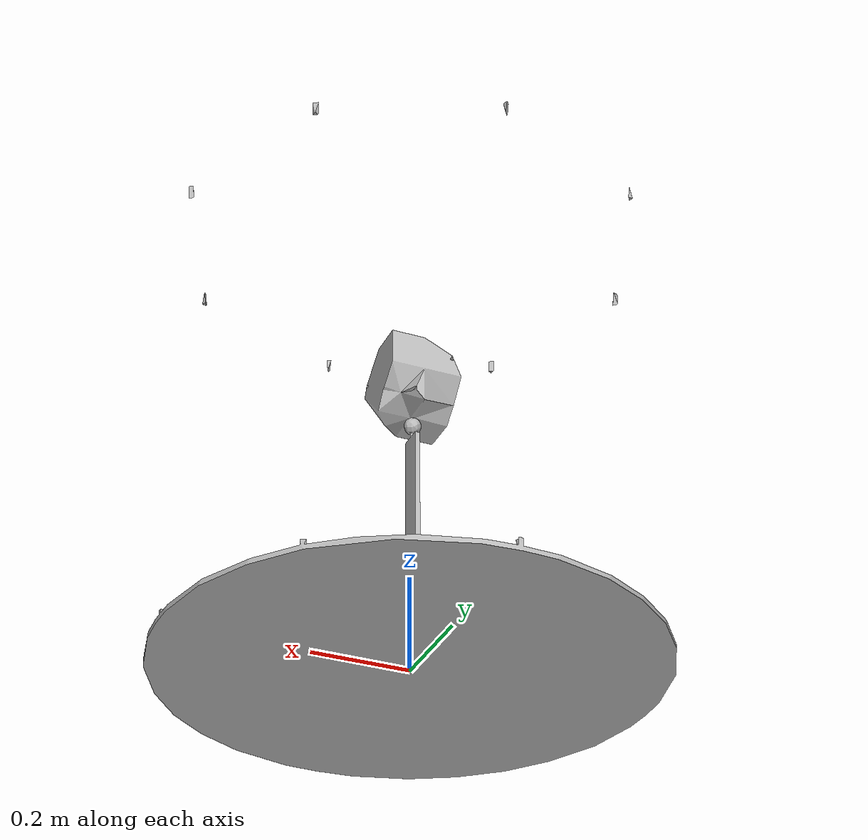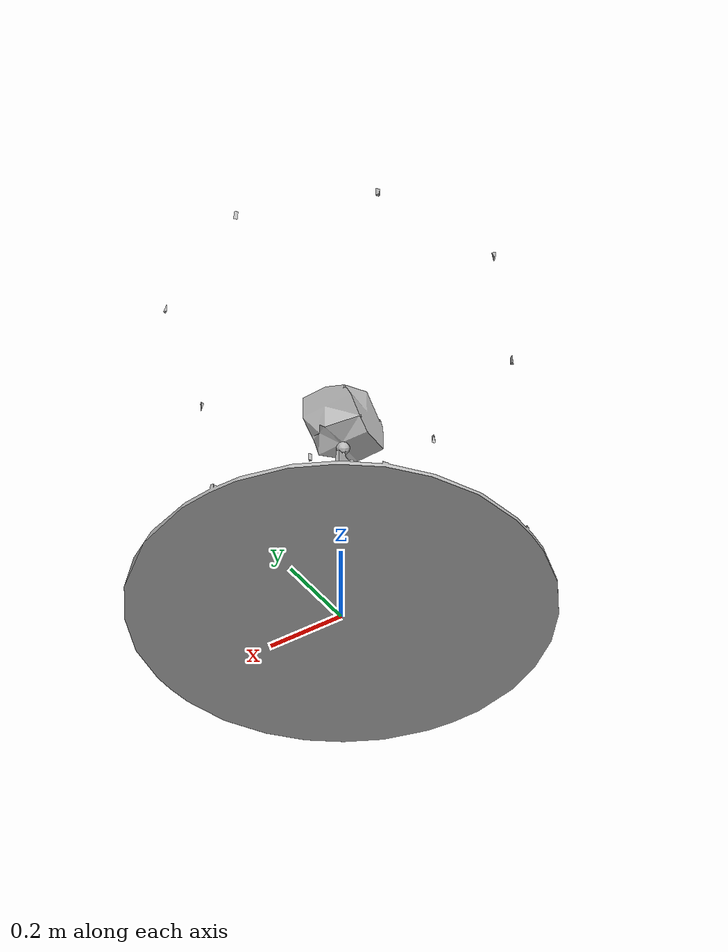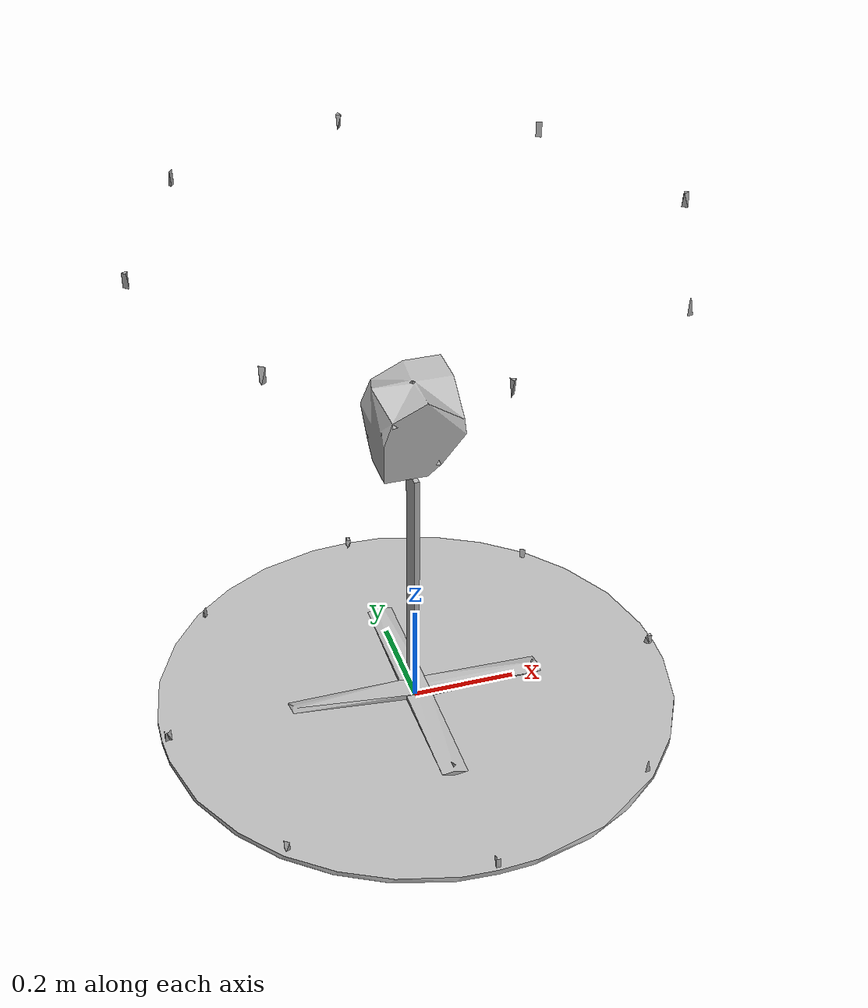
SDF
<sdf version="1.6">
	<model name="test_robot">
		<link name="base">
			<self_collide>false</self_collide>
			<pose frame="">0.0 0.0 0.0 0.0 -0.0 0.0</pose>
			<inertial>
				<pose frame="">0.0 0.0 0.0 0 0 0</pose>
				<mass>61.94396425397244</mass>
				<inertia>
					<ixx>4.030776202710464</ixx>
					<ixy>-1.091393642127514e-15</ixy>
					<ixz>-5.968558980384842e-17</ixz>
					<iyy>4.030776202710346</iyy>
					<iyz>-1.1368683772161604e-17</iyz>
					<izz>7.775324141234855</izz>
				</inertia>
			</inertial>
			<collision name="base_collision">
				<geometry>
					<mesh>
						<uri>model://TestRobot/meshes/collisions/base.stl</uri>
						<scale>0.001 0.001 0.001</scale>
					</mesh>
				</geometry>
			</collision>
			<visual name="base_visual">
				<geometry>
					<mesh>
						<uri>model://TestRobot/meshes/visuals/base.stl</uri>
						<scale>0.001 0.001 0.001</scale>
					</mesh>
				</geometry>
			</visual>
		</link>
		<link name="link0">
			<self_collide>false</self_collide>
			<pose frame="">-8.214312584259862e-15 0.0 0.015062439533909747 0.0 -0.0 0.0</pose>
			<inertial>
				<pose frame="">0.0 0.0 0.0 0 0 0</pose>
				<mass>0.26666504410640257</mass>
				<inertia>
					<ixx>0.00011810660112508352</ixx>
					<ixy>8.881784197001253e-20</ixy>
					<ixz>-2.7755575615628915e-21</ixz>
					<iyy>0.005679638141654712</iyy>
					<iyz>4.60964599824365e-17</iyz>
					<izz>0.00567196902024502</izz>
				</inertia>
			</inertial>
			<collision name="link0_collision">
				<geometry>
					<mesh>
						<uri>model://TestRobot/meshes/collisions/link0.stl</uri>
						<scale>0.001 0.001 0.001</scale>
					</mesh>
				</geometry>
			</collision>
			<visual name="link0_visual">
				<geometry>
					<mesh>
						<uri>model://TestRobot/meshes/visuals/link0.stl</uri>
						<scale>0.001 0.001 0.001</scale>
					</mesh>
				</geometry>
			</visual>
		</link>
		<link name="link1">
			<self_collide>false</self_collide>
			<pose frame="">-3.1990230268275066e-15 3.2557488296458242e-15 0.015062439533909748 0.0 -0.0 0.0</pose>
			<inertial>
				<pose frame="">0.0 0.0 0.0 0 0 0</pose>
				<mass>0.2666650441064026</mass>
				<inertia>
					<ixx>0.005679638141653147</ixx>
					<ixy>1.721733866588693e-16</ixy>
					<ixz>-1.70086167372574e-17</ixz>
					<iyy>0.00011810660112684548</iyy>
					<iyz>1.7136292385089293e-17</iyz>
					<izz>0.005671969020245216</izz>
				</inertia>
			</inertial>
			<collision name="link1_collision">
				<geometry>
					<mesh>
						<uri>model://TestRobot/meshes/collisions/link1.stl</uri>
						<scale>0.001 0.001 0.001</scale>
					</mesh>
				</geometry>
			</collision>
			<visual name="link1_visual">
				<geometry>
					<mesh>
						<uri>model://TestRobot/meshes/visuals/link1.stl</uri>
						<scale>0.001 0.001 0.001</scale>
					</mesh>
				</geometry>
			</visual>
		</link>
		<link name="link2">
			<self_collide>false</self_collide>
			<pose frame="">-0.00499999754889011 -6.631505517127593e-07 0.27983401061456564 0.0 -0.0 0.0</pose>
			<inertial>
				<pose frame="">0.0 0.0 0.0 0 0 0</pose>
				<mass>0.2747992576927284</mass>
				<inertia>
					<ixx>0.027815452473875076</ixx>
					<ixy>-9.120851776393471e-10</ixy>
					<ixz>9.694468713542931e-08</ixz>
					<iyy>0.027769322425034035</iyy>
					<iyz>0.0003844905298372498</iyz>
					<izz>6.586545049189735e-05</izz>
				</inertia>
			</inertial>
			<collision name="link2_collision">
				<geometry>
					<mesh>
						<uri>model://TestRobot/meshes/collisions/link2.stl</uri>
						<scale>0.001 0.001 0.001</scale>
					</mesh>
				</geometry>
			</collision>
			<visual name="link2_visual">
				<geometry>
					<mesh>
						<uri>model://TestRobot/meshes/visuals/link2.stl</uri>
						<scale>0.001 0.001 0.001</scale>
					</mesh>
				</geometry>
			</visual>
		</link>
		<link name="link3">
			<self_collide>false</self_collide>
			<pose frame="">-0.0050000000000000626 1.703593625393671e-16 0.5480000000000005 0.0 -0.0 0.0</pose>
			<inertial>
				<pose frame="">0.0 0.0 0.0 0 0 0</pose>
				<mass>0.006313292906675941</mass>
				<inertia>
					<ixx>0.001896713792328032</ixx>
					<ixy>5.255670031123483e-21</ixy>
					<ixz>-5.891120924417237e-19</ixz>
					<iyy>0.0018968716246506995</iyy>
					<iyz>1.72984225642923e-05</iyz>
					<izz>9.645116042849931e-07</izz>
				</inertia>
			</inertial>
			<collision name="link3_collision">
				<geometry>
					<mesh>
						<uri>model://TestRobot/meshes/collisions/link3.stl</uri>
						<scale>0.001 0.001 0.001</scale>
					</mesh>
				</geometry>
			</collision>
			<visual name="link3_visual">
				<geometry>
					<mesh>
						<uri>model://TestRobot/meshes/visuals/link3.stl</uri>
						<scale>0.001 0.001 0.001</scale>
					</mesh>
				</geometry>
			</visual>
		</link>
		<link name="link4">
			<self_collide>false</self_collide>
			<pose frame="">-0.00500000000000006 -5.467282769816466e-11 0.5479999999205426 0.0 -0.0 0.0</pose>
			<inertial>
				<pose frame="">0.0 0.0 0.0 0 0 0</pose>
				<mass>0.004231987036121513</mass>
				<inertia>
					<ixx>0.001271247036360482</ixx>
					<ixy>-1.1568734416139985e-15</ixy>
					<ixz>1.2939630859853946e-13</ixz>
					<iyy>0.0012713528360411624</iyy>
					<iyz>1.1595644477291761e-05</iyz>
					<izz>4.702015114956135e-07</izz>
				</inertia>
			</inertial>
			<collision name="link4_collision">
				<geometry>
					<mesh>
						<uri>model://TestRobot/meshes/collisions/link4.stl</uri>
						<scale>0.001 0.001 0.001</scale>
					</mesh>
				</geometry>
			</collision>
			<visual name="link4_visual">
				<geometry>
					<mesh>
						<uri>model://TestRobot/meshes/visuals/link4.stl</uri>
						<scale>0.001 0.001 0.001</scale>
					</mesh>
				</geometry>
			</visual>
		</link>
		<link name="link5">
			<self_collide>false</self_collide>
			<pose frame="">-0.004893465268357571 0.00010653453408870285 0.6410850414206763 0.0 -0.0 0.0</pose>
			<inertial>
				<pose frame="">0.0 0.0 0.0 0 0 0</pose>
				<mass>3.5165548311700805</mass>
				<inertia>
					<ixx>1.458491213239523</ixx>
					<ixy>1.8731730927313555e-06</ixy>
					<ixz>-0.000269736920250679</ixz>
					<iyy>1.4585859953997353</iyy>
					<iyz>0.010989203959695593</iyz>
					<izz>0.013303908390296016</izz>
				</inertia>
			</inertial>
			<collision name="link5_collision">
				<geometry>
					<mesh>
						<uri>model://TestRobot/meshes/collisions/link5.stl</uri>
						<scale>0.001 0.001 0.001</scale>
					</mesh>
				</geometry>
			</collision>
			<visual name="link5_visual">
				<geometry>
					<mesh>
						<uri>model://TestRobot/meshes/visuals/link5.stl</uri>
						<scale>0.001 0.001 0.001</scale>
					</mesh>
				</geometry>
			</visual>
		</link>
		<joint name="joint0" type="prismatic">
			<parent>base</parent>
			<child>link0</child>
			<pose frame="">8.214312584259862e-15 0.0 -0.0050624395339097465 0 0 0</pose>
			<axis>
				<xyz>1.0 0.0 0.0</xyz>
				<limit>
					<lower>-0.25</lower>
					<upper>0.25</upper>
				</limit>
				<use_parent_model_frame>0</use_parent_model_frame>
			</axis>
		</joint>
		<joint name="joint1" type="prismatic">
			<parent>link0</parent>
			<child>link1</child>
			<pose frame="">3.1990230268275066e-15 -3.2557488296458242e-15 0.004937560466090252 0 0 0</pose>
			<axis>
				<xyz>0.0 1.0 0.0</xyz>
				<limit>
					<lower>-0.25</lower>
					<upper>0.25</upper>
				</limit>
				<use_parent_model_frame>0</use_parent_model_frame>
			</axis>
		</joint>
		<joint name="joint2" type="prismatic">
			<parent>link1</parent>
			<child>link2</child>
			<pose frame="">0.0049999975488901815 6.631505516606933e-07 -0.2598340106145657 0 0 0</pose>
			<axis>
				<xyz>0.0 0 1.0</xyz>
				<limit>
					<lower>0.0</lower>
					<upper>0.5</upper>
				</limit>
				<use_parent_model_frame>0</use_parent_model_frame>
			</axis>
		</joint>
		<joint name="sphere_axis0" type="revolute">
			<parent>link2</parent>
			<child>link3</child>
			<pose frame="">-4.440892098500626e-18 1.948081707193246e-17 1.4210854715202004e-16 0 0 0</pose>
			<axis>
				<xyz>1.0 0.0 0.0</xyz>
				<limit>
					<lower>-3.141592653589793</lower>
					<upper>3.141592653589793</upper>
				</limit>
				<use_parent_model_frame>0</use_parent_model_frame>
			</axis>
		</joint>
		<joint name="sphere_axis1" type="revolute">
			<parent>link3</parent>
			<child>link4</child>
			<pose frame="">-6.661338147750939e-18 5.467301753834427e-11 7.945800462039187e-11 0 0 0</pose>
			<axis>
				<xyz>0.0 1.0 0</xyz>
				<limit>
					<lower>-3.141592653589793</lower>
					<upper>3.141592653589793</upper>
				</limit>
				<use_parent_model_frame>0</use_parent_model_frame>
			</axis>
		</joint>
		<joint name="sphere_axis2" type="revolute">
			<parent>link4</parent>
			<child>link5</child>
			<pose frame="">-0.00010653473164249971 -0.000106534534088513 -0.0930850414206757 0 0 0</pose>
			<axis>
				<xyz>0 0 1.0</xyz>
				<limit>
					<lower>-3.141592653589793</lower>
					<upper>3.141592653589793</upper>
				</limit>
				<use_parent_model_frame>0</use_parent_model_frame>
			</axis>
		</joint>
		<plugin filename="libcardsflow_gazebo_plugin.so" name="cardsflow_gazebo_plugin" />
	</model>
</sdf>
